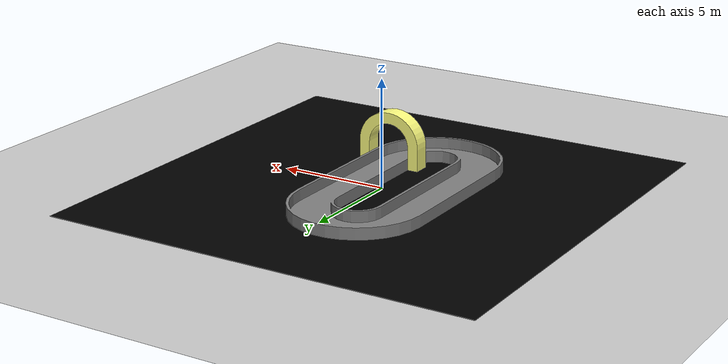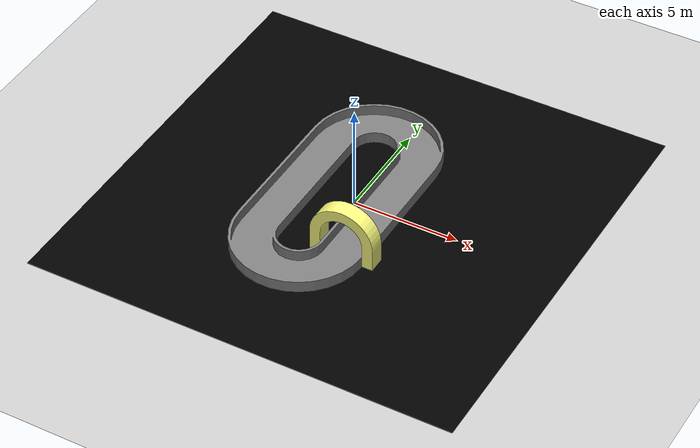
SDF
<?xml version="1.0"?>
<sdf version="1.6">
  <world name="default">

    <include>
      <uri>model://ground_plane</uri>
    </include>

    <include>
      <uri>model://sun</uri>
    </include>

    <include>
      <uri>model://arena</uri>
    </include>

    <scene>
      <shadows>false</shadows>
    </scene>

    <gui fullscreen='0'>
      <camera name='user_camera'>
        <pose frame=''>0.319654 -0.235002 9.29441 0 1.5138 0.009599</pose>
        <view_controller>orbit</view_controller>
        <projection_type>perspective</projection_type>
      </camera>
    </gui>

    <physics type="ode">
      <real_time_update_rate>1000.0</real_time_update_rate>
      <max_step_size>0.001</max_step_size>
      <real_time_factor>1</real_time_factor>
      <ode>
        <solver>
          <type>quick</type>
          <iters>150</iters>
          <precon_iters>0</precon_iters>
          <sor>1.400000</sor>
          <use_dynamic_moi_rescaling>1</use_dynamic_moi_rescaling>
        </solver>
        <constraints>
          <cfm>0.00001</cfm>
          <erp>0.2</erp>
          <contact_max_correcting_vel>2000.000000</contact_max_correcting_vel>
          <contact_surface_layer>0.01000</contact_surface_layer>
        </constraints>
      </ode>
    </physics>

  </world>
</sdf>

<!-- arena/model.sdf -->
<sdf version='1.7'>
  <model name='arena'>
    <link name='base_link'>
      <inertial>
        <pose>-0.031819 -0.449892 0.243258 0 -0 0</pose>
        <mass>17511.1</mass>
        <inertia>
          <ixx>448739</ixx>
          <ixy>8841.84</ixy>
          <ixz>-3530.2</ixz>
          <iyy>754791</iyy>
          <iyz>8093.24</iyz>
          <izz>471733</izz>
        </inertia>
      </inertial>
      <collision name='base_link_collision'>
        <pose>0 0 0 0 -0 0</pose>
        <geometry>
          <mesh>
            <scale>1 1 1</scale>
            <uri>model://arena/meshes/base_link.STL</uri>
          </mesh>
        </geometry>
      </collision>
      <collision name='base_link_fixed_joint_lump__check_point_collision_1'>
        <pose>1.27331 -2.67369 0.000283 1.5708 -0 0</pose>
        <geometry>
          <mesh>
            <scale>1 1 1</scale>
            <uri>model://arena/meshes/check_point.STL</uri>
          </mesh>
        </geometry>
      </collision>
      <collision name='base_link_fixed_joint_lump__track_collision_2'>
        <pose>-0.75869 -0.133689 0.000283 -1.5708 -0 -1.5708</pose>
        <geometry>
          <mesh>
            <scale>1 1 1</scale>
            <uri>model://arena/meshes/track.STL</uri>
          </mesh>
        </geometry>
      </collision>
      <visual name='base_link_visual'>
        <pose>0 0 0 0 -0 0</pose>
        <geometry>
          <mesh>
            <scale>1 1 1</scale>
            <uri>model://arena/meshes/base_link.STL</uri>
          </mesh>
        </geometry>
        <material> <!-- Wheel material -->
          <ambient>0 0 0 1</ambient>
          <diffuse>0 0 0 1</diffuse>
          <specular>0 0 0 0</specular>
          <emissive>0 0 0 1</emissive>
        </material>
      </visual>
      <visual name='base_link_fixed_joint_lump__check_point_visual_1'>
        <pose>1.27331 -2.67369 0.000283 1.5708 -0 0</pose>
        <geometry>
          <mesh>
            <scale>1 1 1</scale>
            <uri>model://arena/meshes/check_point.STL</uri>
          </mesh>
        </geometry>
        <material> <!-- Wheel material -->
          <ambient>1 1 0.501960784313725 1</ambient>
          <diffuse>1 1 0.501960784313725 1</diffuse>
          <specular>0 0 0 0</specular>
          <emissive>0 0 0 1</emissive>
        </material>
      </visual>
      <visual name='base_link_fixed_joint_lump__track_visual_2'>
        <pose>-0.75869 -0.133689 0.000283 -1.5708 -0 -1.5708</pose>
        <geometry>
          <mesh>
            <scale>1 1 1</scale>
            <uri>model://arena/meshes/track.STL</uri>
          </mesh>
        </geometry>
        <material> <!-- Wheel material -->
          <ambient>0.501960784313725 0.501960784313725 0.501960784313725 1</ambient>
          <diffuse>0.501960784313725 0.501960784313725 0.501960784313725 1</diffuse>
          <specular>0 0 0 0</specular>
          <emissive>0 0 0 1</emissive>
        </material>
      </visual>
    </link>
  </model>
</sdf>
